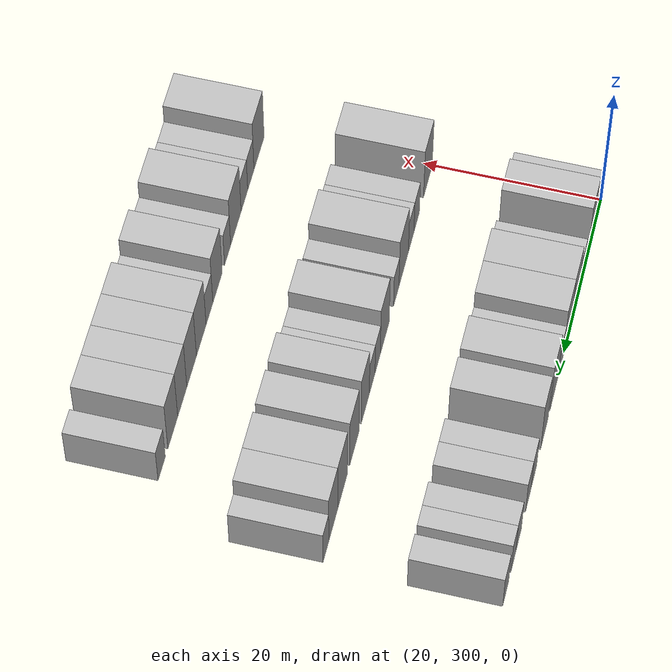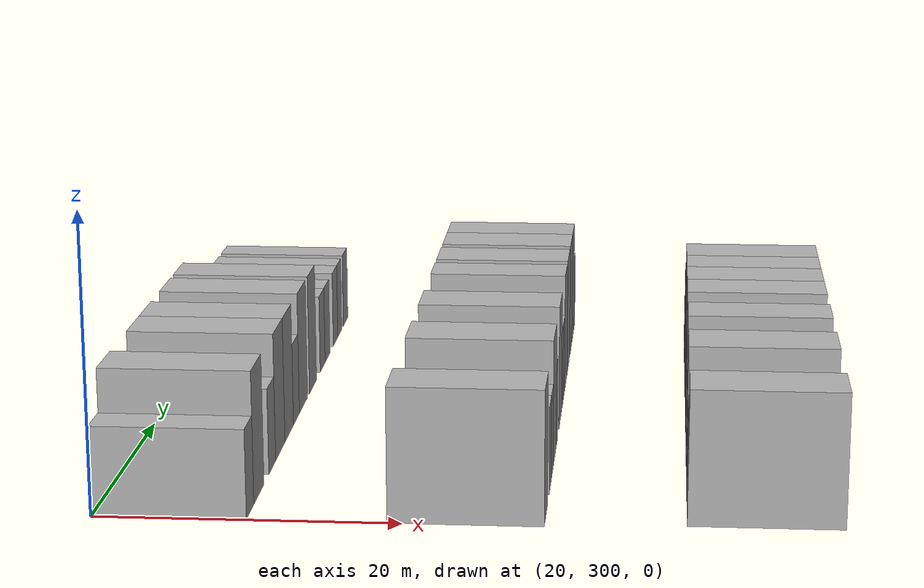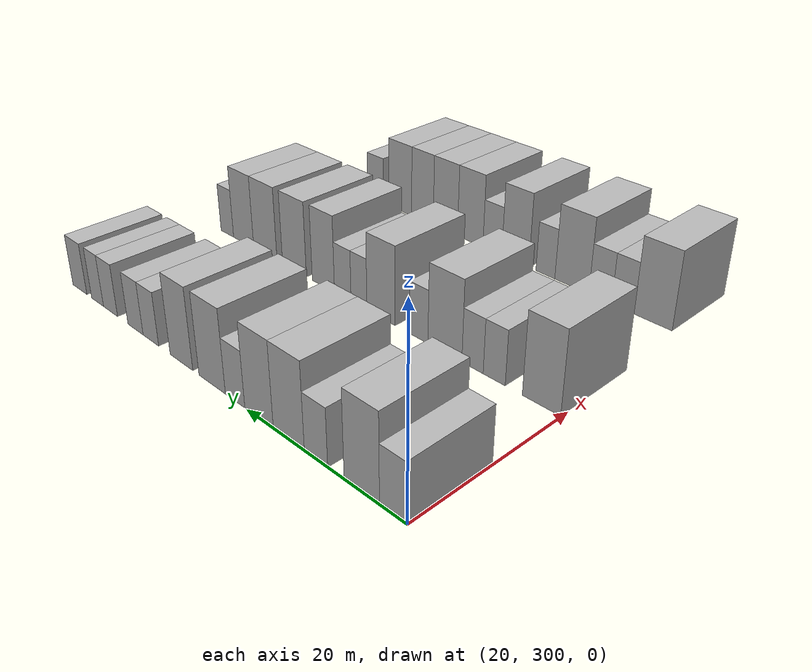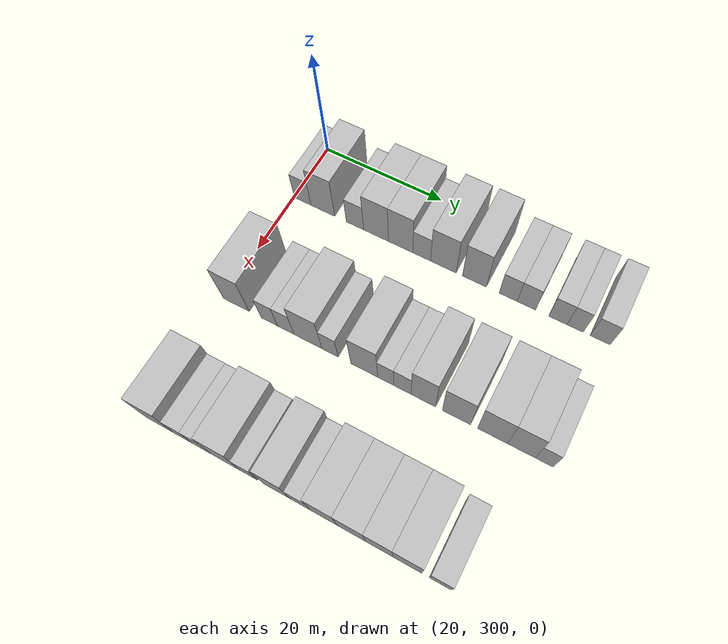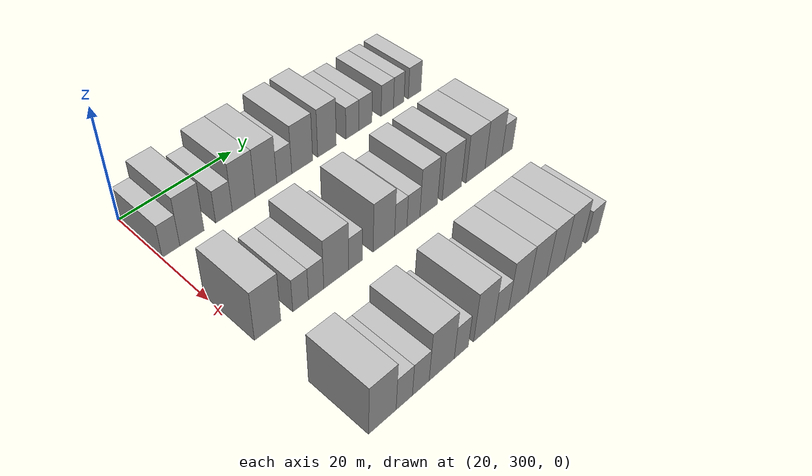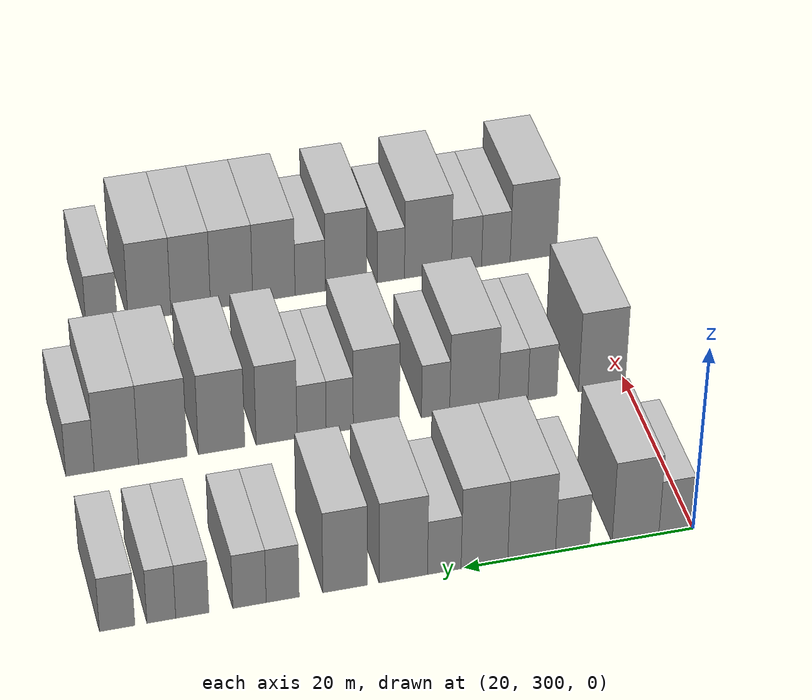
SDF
<sdf version="1.6">
 <world name="default">
  <model name="building_165">
   <static>1</static>
   <pose>25.0000 301.5888 0 0.000000 0.000000 0.000000</pose>
   <link name="link">
    <pose>0 0 3.00 0 0 0</pose>
    <collision name="collision"><geometry><box><size>10.0000 2.9189 6.0000</size></box></geometry></collision>
    <visual name="visual">
     <cast_shadows>0</cast_shadows>
     <geometry><box><size>10.0000 2.9189 6.0000</size></box></geometry>
     <material>
      <script>
       <uri>model://HANNAS_wall/materials/scripts</uri>
       <uri>model://HANNAS_wall/materials/textures</uri>
       <name>vrc/HANNAS_wall</name>
      </script>
     </material>
    </visual>
   </link>
  </model>
  <model name="building_166">
   <static>1</static>
   <pose>25.0000 305.1051 0 0.000000 0.000000 0.000000</pose>
   <link name="link">
    <pose>0 0 4.50 0 0 0</pose>
    <collision name="collision"><geometry><box><size>10.0000 4.1137 9.0000</size></box></geometry></collision>
    <visual name="visual">
     <cast_shadows>0</cast_shadows>
     <geometry><box><size>10.0000 4.1137 9.0000</size></box></geometry>
     <material>
      <script>
       <uri>model://HANNAS_wall/materials/scripts</uri>
       <uri>model://HANNAS_wall/materials/textures</uri>
       <name>vrc/HANNAS_wall</name>
      </script>
     </material>
    </visual>
   </link>
  </model>
  <model name="building_167">
   <static>1</static>
   <pose>25.0000 310.6389 0 0.000000 0.000000 0.000000</pose>
   <link name="link">
    <pose>0 0 3.00 0 0 0</pose>
    <collision name="collision"><geometry><box><size>10.0000 2.9540 6.0000</size></box></geometry></collision>
    <visual name="visual">
     <cast_shadows>0</cast_shadows>
     <geometry><box><size>10.0000 2.9540 6.0000</size></box></geometry>
     <material>
      <script>
       <uri>model://HANNAS_wall/materials/scripts</uri>
       <uri>model://HANNAS_wall/materials/textures</uri>
       <name>vrc/HANNAS_wall</name>
      </script>
     </material>
    </visual>
   </link>
  </model>
  <model name="building_168">
   <static>1</static>
   <pose>25.0000 314.1917 0 0.000000 0.000000 0.000000</pose>
   <link name="link">
    <pose>0 0 4.50 0 0 0</pose>
    <collision name="collision"><geometry><box><size>10.0000 4.1515 9.0000</size></box></geometry></collision>
    <visual name="visual">
     <cast_shadows>0</cast_shadows>
     <geometry><box><size>10.0000 4.1515 9.0000</size></box></geometry>
     <material>
      <script>
       <uri>model://HANNAS_wall/materials/scripts</uri>
       <uri>model://HANNAS_wall/materials/textures</uri>
       <name>vrc/HANNAS_wall</name>
      </script>
     </material>
    </visual>
   </link>
  </model>
  <model name="building_169">
   <static>1</static>
   <pose>25.0000 318.2860 0 0.000000 0.000000 0.000000</pose>
   <link name="link">
    <pose>0 0 4.50 0 0 0</pose>
    <collision name="collision"><geometry><box><size>10.0000 4.0372 9.0000</size></box></geometry></collision>
    <visual name="visual">
     <cast_shadows>0</cast_shadows>
     <geometry><box><size>10.0000 4.0372 9.0000</size></box></geometry>
     <material>
      <script>
       <uri>model://HANNAS_wall/materials/scripts</uri>
       <uri>model://HANNAS_wall/materials/textures</uri>
       <name>vrc/HANNAS_wall</name>
      </script>
     </material>
    </visual>
   </link>
  </model>
  <model name="building_170">
   <static>1</static>
   <pose>25.0000 321.7532 0 0.000000 0.000000 0.000000</pose>
   <link name="link">
    <pose>0 0 3.00 0 0 0</pose>
    <collision name="collision"><geometry><box><size>10.0000 2.8972 6.0000</size></box></geometry></collision>
    <visual name="visual">
     <cast_shadows>0</cast_shadows>
     <geometry><box><size>10.0000 2.8972 6.0000</size></box></geometry>
     <material>
      <script>
       <uri>model://HANNAS_wall/materials/scripts</uri>
       <uri>model://HANNAS_wall/materials/textures</uri>
       <name>vrc/HANNAS_wall</name>
      </script>
     </material>
    </visual>
   </link>
  </model>
  <model name="building_171">
   <static>1</static>
   <pose>25.0000 325.2684 0 0.000000 0.000000 0.000000</pose>
   <link name="link">
    <pose>0 0 4.50 0 0 0</pose>
    <collision name="collision"><geometry><box><size>10.0000 4.1330 9.0000</size></box></geometry></collision>
    <visual name="visual">
     <cast_shadows>0</cast_shadows>
     <geometry><box><size>10.0000 4.1330 9.0000</size></box></geometry>
     <material>
      <script>
       <uri>model://HANNAS_wall/materials/scripts</uri>
       <uri>model://HANNAS_wall/materials/textures</uri>
       <name>vrc/HANNAS_wall</name>
      </script>
     </material>
    </visual>
   </link>
  </model>
  <model name="building_172">
   <static>1</static>
   <pose>25.0000 330.2317 0 0.000000 0.000000 0.000000</pose>
   <link name="link">
    <pose>0 0 4.50 0 0 0</pose>
    <collision name="collision"><geometry><box><size>10.0000 3.7937 9.0000</size></box></geometry></collision>
    <visual name="visual">
     <cast_shadows>0</cast_shadows>
     <geometry><box><size>10.0000 3.7937 9.0000</size></box></geometry>
     <material>
      <script>
       <uri>model://HANNAS_wall/materials/scripts</uri>
       <uri>model://HANNAS_wall/materials/textures</uri>
       <name>vrc/HANNAS_wall</name>
      </script>
     </material>
    </visual>
   </link>
  </model>
  <model name="building_173">
   <static>1</static>
   <pose>25.0000 335.5223 0 0.000000 0.000000 0.000000</pose>
   <link name="link">
    <pose>0 0 3.00 0 0 0</pose>
    <collision name="collision"><geometry><box><size>10.0000 2.7874 6.0000</size></box></geometry></collision>
    <visual name="visual">
     <cast_shadows>0</cast_shadows>
     <geometry><box><size>10.0000 2.7874 6.0000</size></box></geometry>
     <material>
      <script>
       <uri>model://HANNAS_wall/materials/scripts</uri>
       <uri>model://HANNAS_wall/materials/textures</uri>
       <name>vrc/HANNAS_wall</name>
      </script>
     </material>
    </visual>
   </link>
  </model>
  <model name="building_174">
   <static>1</static>
   <pose>25.0000 338.3214 0 0.000000 0.000000 0.000000</pose>
   <link name="link">
    <pose>0 0 3.00 0 0 0</pose>
    <collision name="collision"><geometry><box><size>10.0000 2.8108 6.0000</size></box></geometry></collision>
    <visual name="visual">
     <cast_shadows>0</cast_shadows>
     <geometry><box><size>10.0000 2.8108 6.0000</size></box></geometry>
     <material>
      <script>
       <uri>model://HANNAS_wall/materials/scripts</uri>
       <uri>model://HANNAS_wall/materials/textures</uri>
       <name>vrc/HANNAS_wall</name>
      </script>
     </material>
    </visual>
   </link>
  </model>
  <model name="building_175">
   <static>1</static>
   <pose>25.0000 343.1128 0 0.000000 0.000000 0.000000</pose>
   <link name="link">
    <pose>0 0 3.00 0 0 0</pose>
    <collision name="collision"><geometry><box><size>10.0000 2.7720 6.0000</size></box></geometry></collision>
    <visual name="visual">
     <cast_shadows>0</cast_shadows>
     <geometry><box><size>10.0000 2.7720 6.0000</size></box></geometry>
     <material>
      <script>
       <uri>model://HANNAS_wall/materials/scripts</uri>
       <uri>model://HANNAS_wall/materials/textures</uri>
       <name>vrc/HANNAS_wall</name>
      </script>
     </material>
    </visual>
   </link>
  </model>
  <model name="building_176">
   <static>1</static>
   <pose>25.0000 345.7003 0 0.000000 0.000000 0.000000</pose>
   <link name="link">
    <pose>0 0 3.00 0 0 0</pose>
    <collision name="collision"><geometry><box><size>10.0000 2.4030 6.0000</size></box></geometry></collision>
    <visual name="visual">
     <cast_shadows>0</cast_shadows>
     <geometry><box><size>10.0000 2.4030 6.0000</size></box></geometry>
     <material>
      <script>
       <uri>model://HANNAS_wall/materials/scripts</uri>
       <uri>model://HANNAS_wall/materials/textures</uri>
       <name>vrc/HANNAS_wall</name>
      </script>
     </material>
    </visual>
   </link>
  </model>
  <model name="building_177">
   <static>1</static>
   <pose>25.0000 349.3713 0 0.000000 0.000000 0.000000</pose>
   <link name="link">
    <pose>0 0 3.00 0 0 0</pose>
    <collision name="collision"><geometry><box><size>10.0000 2.9388 6.0000</size></box></geometry></collision>
    <visual name="visual">
     <cast_shadows>0</cast_shadows>
     <geometry><box><size>10.0000 2.9388 6.0000</size></box></geometry>
     <material>
      <script>
       <uri>model://HANNAS_wall/materials/scripts</uri>
       <uri>model://HANNAS_wall/materials/textures</uri>
       <name>vrc/HANNAS_wall</name>
      </script>
     </material>
    </visual>
   </link>
  </model>
  <model name="building_333">
   <static>1</static>
   <pose>44.0000 302.2389 0 0.000000 0.000000 0.000000</pose>
   <link name="link">
    <pose>0 0 4.50 0 0 0</pose>
    <collision name="collision"><geometry><box><size>10.0000 4.3135 9.0000</size></box></geometry></collision>
    <visual name="visual">
     <cast_shadows>0</cast_shadows>
     <geometry><box><size>10.0000 4.3135 9.0000</size></box></geometry>
     <material>
      <script>
       <uri>model://HANNAS_wall/materials/scripts</uri>
       <uri>model://HANNAS_wall/materials/textures</uri>
       <name>vrc/HANNAS_wall</name>
      </script>
     </material>
    </visual>
   </link>
  </model>
  <model name="building_334">
   <static>1</static>
   <pose>44.0000 307.7300 0 0.000000 0.000000 0.000000</pose>
   <link name="link">
    <pose>0 0 3.00 0 0 0</pose>
    <collision name="collision"><geometry><box><size>10.0000 2.6686 6.0000</size></box></geometry></collision>
    <visual name="visual">
     <cast_shadows>0</cast_shadows>
     <geometry><box><size>10.0000 2.6686 6.0000</size></box></geometry>
     <material>
      <script>
       <uri>model://HANNAS_wall/materials/scripts</uri>
       <uri>model://HANNAS_wall/materials/textures</uri>
       <name>vrc/HANNAS_wall</name>
      </script>
     </material>
    </visual>
   </link>
  </model>
  <model name="building_335">
   <static>1</static>
   <pose>44.0000 310.4001 0 0.000000 0.000000 0.000000</pose>
   <link name="link">
    <pose>0 0 3.00 0 0 0</pose>
    <collision name="collision"><geometry><box><size>10.0000 2.6716 6.0000</size></box></geometry></collision>
    <visual name="visual">
     <cast_shadows>0</cast_shadows>
     <geometry><box><size>10.0000 2.6716 6.0000</size></box></geometry>
     <material>
      <script>
       <uri>model://HANNAS_wall/materials/scripts</uri>
       <uri>model://HANNAS_wall/materials/textures</uri>
       <name>vrc/HANNAS_wall</name>
      </script>
     </material>
    </visual>
   </link>
  </model>
  <model name="building_336">
   <static>1</static>
   <pose>44.0000 313.9701 0 0.000000 0.000000 0.000000</pose>
   <link name="link">
    <pose>0 0 4.50 0 0 0</pose>
    <collision name="collision"><geometry><box><size>10.0000 4.4685 9.0000</size></box></geometry></collision>
    <visual name="visual">
     <cast_shadows>0</cast_shadows>
     <geometry><box><size>10.0000 4.4685 9.0000</size></box></geometry>
     <material>
      <script>
       <uri>model://HANNAS_wall/materials/scripts</uri>
       <uri>model://HANNAS_wall/materials/textures</uri>
       <name>vrc/HANNAS_wall</name>
      </script>
     </material>
    </visual>
   </link>
  </model>
  <model name="building_337">
   <static>1</static>
   <pose>44.0000 317.4843 0 0.000000 0.000000 0.000000</pose>
   <link name="link">
    <pose>0 0 3.00 0 0 0</pose>
    <collision name="collision"><geometry><box><size>10.0000 2.5599 6.0000</size></box></geometry></collision>
    <visual name="visual">
     <cast_shadows>0</cast_shadows>
     <geometry><box><size>10.0000 2.5599 6.0000</size></box></geometry>
     <material>
      <script>
       <uri>model://HANNAS_wall/materials/scripts</uri>
       <uri>model://HANNAS_wall/materials/textures</uri>
       <name>vrc/HANNAS_wall</name>
      </script>
     </material>
    </visual>
   </link>
  </model>
  <model name="building_338">
   <static>1</static>
   <pose>44.0000 322.8418 0 0.000000 0.000000 0.000000</pose>
   <link name="link">
    <pose>0 0 4.50 0 0 0</pose>
    <collision name="collision"><geometry><box><size>10.0000 4.1550 9.0000</size></box></geometry></collision>
    <visual name="visual">
     <cast_shadows>0</cast_shadows>
     <geometry><box><size>10.0000 4.1550 9.0000</size></box></geometry>
     <material>
      <script>
       <uri>model://HANNAS_wall/materials/scripts</uri>
       <uri>model://HANNAS_wall/materials/textures</uri>
       <name>vrc/HANNAS_wall</name>
      </script>
     </material>
    </visual>
   </link>
  </model>
  <model name="building_339">
   <static>1</static>
   <pose>44.0000 326.1313 0 0.000000 0.000000 0.000000</pose>
   <link name="link">
    <pose>0 0 3.00 0 0 0</pose>
    <collision name="collision"><geometry><box><size>10.0000 2.4240 6.0000</size></box></geometry></collision>
    <visual name="visual">
     <cast_shadows>0</cast_shadows>
     <geometry><box><size>10.0000 2.4240 6.0000</size></box></geometry>
     <material>
      <script>
       <uri>model://HANNAS_wall/materials/scripts</uri>
       <uri>model://HANNAS_wall/materials/textures</uri>
       <name>vrc/HANNAS_wall</name>
      </script>
     </material>
    </visual>
   </link>
  </model>
  <model name="building_340">
   <static>1</static>
   <pose>44.0000 328.6502 0 0.000000 0.000000 0.000000</pose>
   <link name="link">
    <pose>0 0 3.00 0 0 0</pose>
    <collision name="collision"><geometry><box><size>10.0000 2.6138 6.0000</size></box></geometry></collision>
    <visual name="visual">
     <cast_shadows>0</cast_shadows>
     <geometry><box><size>10.0000 2.6138 6.0000</size></box></geometry>
     <material>
      <script>
       <uri>model://HANNAS_wall/materials/scripts</uri>
       <uri>model://HANNAS_wall/materials/textures</uri>
       <name>vrc/HANNAS_wall</name>
      </script>
     </material>
    </visual>
   </link>
  </model>
  <model name="building_341">
   <static>1</static>
   <pose>44.0000 331.7780 0 0.000000 0.000000 0.000000</pose>
   <link name="link">
    <pose>0 0 4.50 0 0 0</pose>
    <collision name="collision"><geometry><box><size>10.0000 3.6419 9.0000</size></box></geometry></collision>
    <visual name="visual">
     <cast_shadows>0</cast_shadows>
     <geometry><box><size>10.0000 3.6419 9.0000</size></box></geometry>
     <material>
      <script>
       <uri>model://HANNAS_wall/materials/scripts</uri>
       <uri>model://HANNAS_wall/materials/textures</uri>
       <name>vrc/HANNAS_wall</name>
      </script>
     </material>
    </visual>
   </link>
  </model>
  <model name="building_342">
   <static>1</static>
   <pose>44.0000 336.6580 0 0.000000 0.000000 0.000000</pose>
   <link name="link">
    <pose>0 0 4.50 0 0 0</pose>
    <collision name="collision"><geometry><box><size>10.0000 4.1180 9.0000</size></box></geometry></collision>
    <visual name="visual">
     <cast_shadows>0</cast_shadows>
     <geometry><box><size>10.0000 4.1180 9.0000</size></box></geometry>
     <material>
      <script>
       <uri>model://HANNAS_wall/materials/scripts</uri>
       <uri>model://HANNAS_wall/materials/textures</uri>
       <name>vrc/HANNAS_wall</name>
      </script>
     </material>
    </visual>
   </link>
  </model>
  <model name="building_343">
   <static>1</static>
   <pose>44.0000 341.8525 0 0.000000 0.000000 0.000000</pose>
   <link name="link">
    <pose>0 0 4.50 0 0 0</pose>
    <collision name="collision"><geometry><box><size>10.0000 4.2711 9.0000</size></box></geometry></collision>
    <visual name="visual">
     <cast_shadows>0</cast_shadows>
     <geometry><box><size>10.0000 4.2711 9.0000</size></box></geometry>
     <material>
      <script>
       <uri>model://HANNAS_wall/materials/scripts</uri>
       <uri>model://HANNAS_wall/materials/textures</uri>
       <name>vrc/HANNAS_wall</name>
      </script>
     </material>
    </visual>
   </link>
  </model>
  <model name="building_344">
   <static>1</static>
   <pose>44.0000 345.9261 0 0.000000 0.000000 0.000000</pose>
   <link name="link">
    <pose>0 0 4.50 0 0 0</pose>
    <collision name="collision"><geometry><box><size>10.0000 3.8761 9.0000</size></box></geometry></collision>
    <visual name="visual">
     <cast_shadows>0</cast_shadows>
     <geometry><box><size>10.0000 3.8761 9.0000</size></box></geometry>
     <material>
      <script>
       <uri>model://HANNAS_wall/materials/scripts</uri>
       <uri>model://HANNAS_wall/materials/textures</uri>
       <name>vrc/HANNAS_wall</name>
      </script>
     </material>
    </visual>
   </link>
  </model>
  <model name="building_345">
   <static>1</static>
   <pose>44.0000 349.1014 0 0.000000 0.000000 0.000000</pose>
   <link name="link">
    <pose>0 0 3.00 0 0 0</pose>
    <collision name="collision"><geometry><box><size>10.0000 2.4744 6.0000</size></box></geometry></collision>
    <visual name="visual">
     <cast_shadows>0</cast_shadows>
     <geometry><box><size>10.0000 2.4744 6.0000</size></box></geometry>
     <material>
      <script>
       <uri>model://HANNAS_wall/materials/scripts</uri>
       <uri>model://HANNAS_wall/materials/textures</uri>
       <name>vrc/HANNAS_wall</name>
      </script>
     </material>
    </visual>
   </link>
  </model>
  <model name="building_508">
   <static>1</static>
   <pose>63.0000 303.0617 0 0.000000 0.000000 0.000000</pose>
   <link name="link">
    <pose>0 0 4.50 0 0 0</pose>
    <collision name="collision"><geometry><box><size>10.0000 4.4870 9.0000</size></box></geometry></collision>
    <visual name="visual">
     <cast_shadows>0</cast_shadows>
     <geometry><box><size>10.0000 4.4870 9.0000</size></box></geometry>
     <material>
      <script>
       <uri>model://HANNAS_wall/materials/scripts</uri>
       <uri>model://HANNAS_wall/materials/textures</uri>
       <name>vrc/HANNAS_wall</name>
      </script>
     </material>
    </visual>
   </link>
  </model>
  <model name="building_509">
   <static>1</static>
   <pose>63.0000 306.6799 0 0.000000 0.000000 0.000000</pose>
   <link name="link">
    <pose>0 0 3.00 0 0 0</pose>
    <collision name="collision"><geometry><box><size>10.0000 2.7496 6.0000</size></box></geometry></collision>
    <visual name="visual">
     <cast_shadows>0</cast_shadows>
     <geometry><box><size>10.0000 2.7496 6.0000</size></box></geometry>
     <material>
      <script>
       <uri>model://HANNAS_wall/materials/scripts</uri>
       <uri>model://HANNAS_wall/materials/textures</uri>
       <name>vrc/HANNAS_wall</name>
      </script>
     </material>
    </visual>
   </link>
  </model>
  <model name="building_510">
   <static>1</static>
   <pose>63.0000 309.4983 0 0.000000 0.000000 0.000000</pose>
   <link name="link">
    <pose>0 0 3.00 0 0 0</pose>
    <collision name="collision"><geometry><box><size>10.0000 2.8872 6.0000</size></box></geometry></collision>
    <visual name="visual">
     <cast_shadows>0</cast_shadows>
     <geometry><box><size>10.0000 2.8872 6.0000</size></box></geometry>
     <material>
      <script>
       <uri>model://HANNAS_wall/materials/scripts</uri>
       <uri>model://HANNAS_wall/materials/textures</uri>
       <name>vrc/HANNAS_wall</name>
      </script>
     </material>
    </visual>
   </link>
  </model>
  <model name="building_511">
   <static>1</static>
   <pose>63.0000 313.1857 0 0.000000 0.000000 0.000000</pose>
   <link name="link">
    <pose>0 0 4.50 0 0 0</pose>
    <collision name="collision"><geometry><box><size>10.0000 4.4875 9.0000</size></box></geometry></collision>
    <visual name="visual">
     <cast_shadows>0</cast_shadows>
     <geometry><box><size>10.0000 4.4875 9.0000</size></box></geometry>
     <material>
      <script>
       <uri>model://HANNAS_wall/materials/scripts</uri>
       <uri>model://HANNAS_wall/materials/textures</uri>
       <name>vrc/HANNAS_wall</name>
      </script>
     </material>
    </visual>
   </link>
  </model>
  <model name="building_512">
   <static>1</static>
   <pose>63.0000 316.7316 0 0.000000 0.000000 0.000000</pose>
   <link name="link">
    <pose>0 0 3.00 0 0 0</pose>
    <collision name="collision"><geometry><box><size>10.0000 2.6043 6.0000</size></box></geometry></collision>
    <visual name="visual">
     <cast_shadows>0</cast_shadows>
     <geometry><box><size>10.0000 2.6043 6.0000</size></box></geometry>
     <material>
      <script>
       <uri>model://HANNAS_wall/materials/scripts</uri>
       <uri>model://HANNAS_wall/materials/textures</uri>
       <name>vrc/HANNAS_wall</name>
      </script>
     </material>
    </visual>
   </link>
  </model>
  <model name="building_513">
   <static>1</static>
   <pose>63.0000 320.9885 0 0.000000 0.000000 0.000000</pose>
   <link name="link">
    <pose>0 0 4.50 0 0 0</pose>
    <collision name="collision"><geometry><box><size>10.0000 3.9094 9.0000</size></box></geometry></collision>
    <visual name="visual">
     <cast_shadows>0</cast_shadows>
     <geometry><box><size>10.0000 3.9094 9.0000</size></box></geometry>
     <material>
      <script>
       <uri>model://HANNAS_wall/materials/scripts</uri>
       <uri>model://HANNAS_wall/materials/textures</uri>
       <name>vrc/HANNAS_wall</name>
      </script>
     </material>
    </visual>
   </link>
  </model>
  <model name="building_514">
   <static>1</static>
   <pose>63.0000 324.3630 0 0.000000 0.000000 0.000000</pose>
   <link name="link">
    <pose>0 0 3.00 0 0 0</pose>
    <collision name="collision"><geometry><box><size>10.0000 2.8396 6.0000</size></box></geometry></collision>
    <visual name="visual">
     <cast_shadows>0</cast_shadows>
     <geometry><box><size>10.0000 2.8396 6.0000</size></box></geometry>
     <material>
      <script>
       <uri>model://HANNAS_wall/materials/scripts</uri>
       <uri>model://HANNAS_wall/materials/textures</uri>
       <name>vrc/HANNAS_wall</name>
      </script>
     </material>
    </visual>
   </link>
  </model>
  <model name="building_515">
   <static>1</static>
   <pose>63.0000 327.7666 0 0.000000 0.000000 0.000000</pose>
   <link name="link">
    <pose>0 0 4.50 0 0 0</pose>
    <collision name="collision"><geometry><box><size>10.0000 3.9677 9.0000</size></box></geometry></collision>
    <visual name="visual">
     <cast_shadows>0</cast_shadows>
     <geometry><box><size>10.0000 3.9677 9.0000</size></box></geometry>
     <material>
      <script>
       <uri>model://HANNAS_wall/materials/scripts</uri>
       <uri>model://HANNAS_wall/materials/textures</uri>
       <name>vrc/HANNAS_wall</name>
      </script>
     </material>
    </visual>
   </link>
  </model>
  <model name="building_516">
   <static>1</static>
   <pose>63.0000 331.7200 0 0.000000 0.000000 0.000000</pose>
   <link name="link">
    <pose>0 0 4.50 0 0 0</pose>
    <collision name="collision"><geometry><box><size>10.0000 3.9392 9.0000</size></box></geometry></collision>
    <visual name="visual">
     <cast_shadows>0</cast_shadows>
     <geometry><box><size>10.0000 3.9392 9.0000</size></box></geometry>
     <material>
      <script>
       <uri>model://HANNAS_wall/materials/scripts</uri>
       <uri>model://HANNAS_wall/materials/textures</uri>
       <name>vrc/HANNAS_wall</name>
      </script>
     </material>
    </visual>
   </link>
  </model>
  <model name="building_517">
   <static>1</static>
   <pose>63.0000 335.5295 0 0.000000 0.000000 0.000000</pose>
   <link name="link">
    <pose>0 0 4.50 0 0 0</pose>
    <collision name="collision"><geometry><box><size>10.0000 3.6798 9.0000</size></box></geometry></collision>
    <visual name="visual">
     <cast_shadows>0</cast_shadows>
     <geometry><box><size>10.0000 3.6798 9.0000</size></box></geometry>
     <material>
      <script>
       <uri>model://HANNAS_wall/materials/scripts</uri>
       <uri>model://HANNAS_wall/materials/textures</uri>
       <name>vrc/HANNAS_wall</name>
      </script>
     </material>
    </visual>
   </link>
  </model>
  <model name="building_518">
   <static>1</static>
   <pose>63.0000 339.3479 0 0.000000 0.000000 0.000000</pose>
   <link name="link">
    <pose>0 0 4.50 0 0 0</pose>
    <collision name="collision"><geometry><box><size>10.0000 3.9569 9.0000</size></box></geometry></collision>
    <visual name="visual">
     <cast_shadows>0</cast_shadows>
     <geometry><box><size>10.0000 3.9569 9.0000</size></box></geometry>
     <material>
      <script>
       <uri>model://HANNAS_wall/materials/scripts</uri>
       <uri>model://HANNAS_wall/materials/textures</uri>
       <name>vrc/HANNAS_wall</name>
      </script>
     </material>
    </visual>
   </link>
  </model>
  <model name="building_519">
   <static>1</static>
   <pose>63.0000 343.7659 0 0.000000 0.000000 0.000000</pose>
   <link name="link">
    <pose>0 0 3.00 0 0 0</pose>
    <collision name="collision"><geometry><box><size>10.0000 2.8791 6.0000</size></box></geometry></collision>
    <visual name="visual">
     <cast_shadows>0</cast_shadows>
     <geometry><box><size>10.0000 2.8791 6.0000</size></box></geometry>
     <material>
      <script>
       <uri>model://HANNAS_wall/materials/scripts</uri>
       <uri>model://HANNAS_wall/materials/textures</uri>
       <name>vrc/HANNAS_wall</name>
      </script>
     </material>
    </visual>
   </link>
  </model>
 </world>
</sdf>
